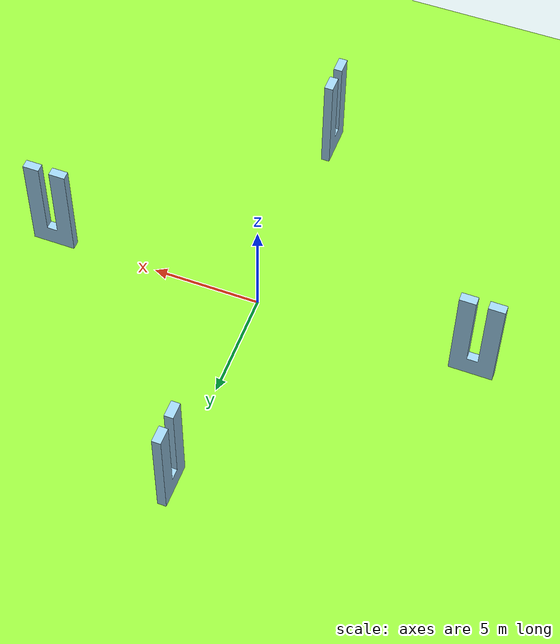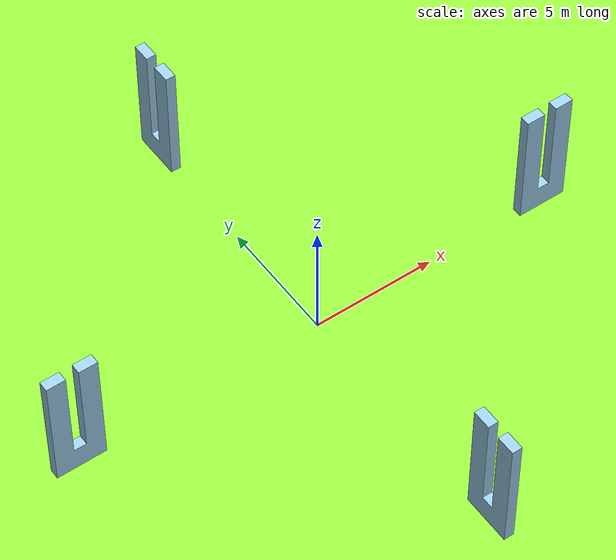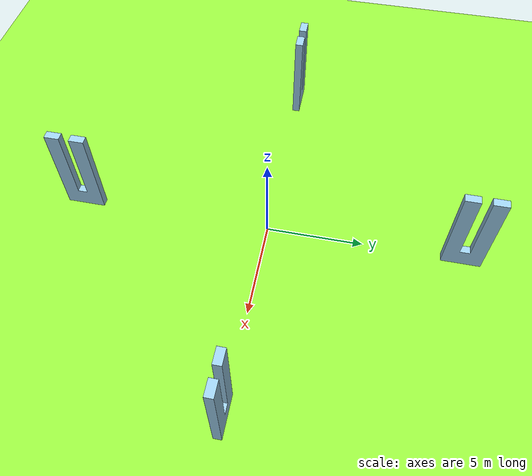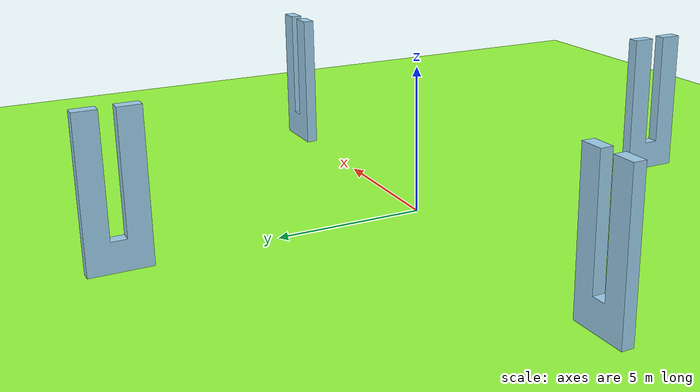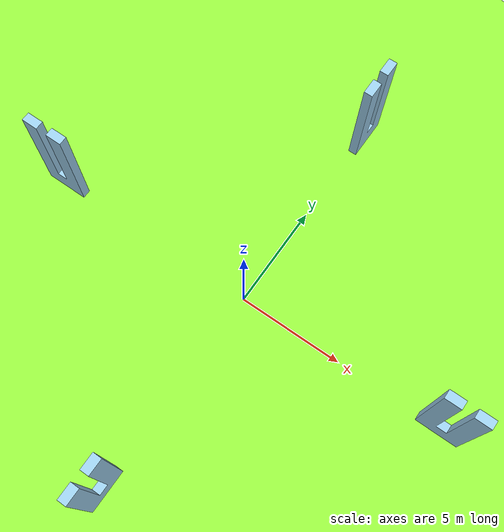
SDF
<?xml version="1.0" encoding="UTF-8"?>
<sdf version="1.9">
  <world name="window">
    <physics type="ode">
      <max_step_size>0.004</max_step_size>
      <real_time_factor>1.0</real_time_factor>
      <real_time_update_rate>250</real_time_update_rate>
    </physics>
    <plugin name="gz::sim::systems::Physics" filename="gz-sim-physics-system" />
    <plugin name="gz::sim::systems::UserCommands" filename="gz-sim-user-commands-system" />
    <plugin name="gz::sim::systems::SceneBroadcaster" filename="gz-sim-scene-broadcaster-system" />
    <plugin name="gz::sim::systems::Contact" filename="gz-sim-contact-system" />
    <plugin name="gz::sim::systems::Imu" filename="gz-sim-imu-system" />
    <plugin name="gz::sim::systems::AirPressure" filename="gz-sim-air-pressure-system" />
    <plugin name="gz::sim::systems::ApplyLinkWrench" filename="gz-sim-apply-link-wrench-system" />
    <plugin name="gz::sim::systems::NavSat" filename="gz-sim-navsat-system" />
    <plugin name="gz::sim::systems::Sensors" filename="gz-sim-sensors-system">
      <render_engine>ogre2</render_engine>
    </plugin>
    <gui fullscreen="false">
      <!-- 3D scene -->
      <plugin filename="MinimalScene" name="3D View">
        <gz-gui>
          <title>3D View</title>
          <property type="bool" key="showTitleBar">false</property>
          <property type="string" key="state">docked</property>
        </gz-gui>
        <engine>ogre2</engine>
        <scene>scene</scene>
        <ambient_light>0.4 0.4 0.4</ambient_light>
        <background_color>0.8 0.8 0.8</background_color>
        <camera_pose>-6 0 6 0 0.5 0</camera_pose>
        <camera_clip>
          <near>0.25</near>
          <far>25000</far>
        </camera_clip>
      </plugin>
      <!-- Plugins that add functionality to the scene -->
      <plugin filename="EntityContextMenuPlugin" name="Entity context menu">
        <gz-gui>
          <property key="state" type="string">floating</property>
          <property key="width" type="double">5</property>
          <property key="height" type="double">5</property>
          <property key="showTitleBar" type="bool">false</property>
        </gz-gui>
      </plugin>
      <plugin filename="GzSceneManager" name="Scene Manager">
        <gz-gui>
          <property key="resizable" type="bool">false</property>
          <property key="width" type="double">5</property>
          <property key="height" type="double">5</property>
          <property key="state" type="string">floating</property>
          <property key="showTitleBar" type="bool">false</property>
        </gz-gui>
      </plugin>
      <plugin filename="InteractiveViewControl" name="Interactive view control">
        <gz-gui>
          <property key="resizable" type="bool">false</property>
          <property key="width" type="double">5</property>
          <property key="height" type="double">5</property>
          <property key="state" type="string">floating</property>
          <property key="showTitleBar" type="bool">false</property>
        </gz-gui>
      </plugin>
      <plugin filename="CameraTracking" name="Camera Tracking">
        <gz-gui>
          <property key="resizable" type="bool">false</property>
          <property key="width" type="double">5</property>
          <property key="height" type="double">5</property>
          <property key="state" type="string">floating</property>
          <property key="showTitleBar" type="bool">false</property>
        </gz-gui>
      </plugin>
      <plugin filename="MarkerManager" name="Marker manager">
        <gz-gui>
          <property key="resizable" type="bool">false</property>
          <property key="width" type="double">5</property>
          <property key="height" type="double">5</property>
          <property key="state" type="string">floating</property>
          <property key="showTitleBar" type="bool">false</property>
        </gz-gui>
      </plugin>
      <plugin filename="SelectEntities" name="Select Entities">
        <gz-gui>
          <anchors target="Select entities">
            <line own="right" target="right" />
            <line own="top" target="top" />
          </anchors>
          <property key="resizable" type="bool">false</property>
          <property key="width" type="double">5</property>
          <property key="height" type="double">5</property>
          <property key="state" type="string">floating</property>
          <property key="showTitleBar" type="bool">false</property>
        </gz-gui>
      </plugin>
      <plugin filename="VisualizationCapabilities" name="Visualization Capabilities">
        <gz-gui>
          <property key="resizable" type="bool">false</property>
          <property key="width" type="double">5</property>
          <property key="height" type="double">5</property>
          <property key="state" type="string">floating</property>
          <property key="showTitleBar" type="bool">false</property>
        </gz-gui>
      </plugin>
      <plugin filename="Spawn" name="Spawn Entities">
        <gz-gui>
          <anchors target="Select entities">
            <line own="right" target="right" />
            <line own="top" target="top" />
          </anchors>
          <property key="resizable" type="bool">false</property>
          <property key="width" type="double">5</property>
          <property key="height" type="double">5</property>
          <property key="state" type="string">floating</property>
          <property key="showTitleBar" type="bool">false</property>
        </gz-gui>
      </plugin>
      <plugin name="World control" filename="WorldControl">
        <gz-gui>
          <title>World control</title>
          <property type="bool" key="showTitleBar">0</property>
          <property type="bool" key="resizable">0</property>
          <property type="double" key="height">72</property>
          <property type="double" key="width">121</property>
          <property type="double" key="z">1</property>
          <property type="string" key="state">floating</property>
          <anchors target="3D View">
            <line own="left" target="left" />
            <line own="bottom" target="bottom" />
          </anchors>
        </gz-gui>
        <play_pause>1</play_pause>
        <step>1</step>
        <start_paused>1</start_paused>
      </plugin>
      <plugin name="World stats" filename="WorldStats">
        <gz-gui>
          <title>World stats</title>
          <property type="bool" key="showTitleBar">0</property>
          <property type="bool" key="resizable">0</property>
          <property type="double" key="height">110</property>
          <property type="double" key="width">290</property>
          <property type="double" key="z">1</property>
          <property type="string" key="state">floating</property>
          <anchors target="3D View">
            <line own="right" target="right" />
            <line own="bottom" target="bottom" />
          </anchors>
        </gz-gui>
        <sim_time>1</sim_time>
        <real_time>1</real_time>
        <real_time_factor>1</real_time_factor>
        <iterations>1</iterations>
      </plugin>
      <plugin name="Entity tree" filename="EntityTree" />
    </gui>
    <gravity>0 0 -9.8000000000000007</gravity>
    <magnetic_field>6.0000000000000002e-06 2.3e-05 -4.1999999999999998e-05</magnetic_field>
    <atmosphere type='adiabatic'/>
    <scene>
      <sky>
        <clouds>
          <speed>12</speed>
        </clouds>
      </sky>
      <grid>true</grid>
      <ambient>0.5 0.5 0.5 0.300000012</ambient>
      <background>0.300000012 0.300000012 0.300000012 0.300000012</background>
      <shadows>true</shadows>
    </scene>
    <spherical_coordinates>
      <surface_model>EARTH_WGS84</surface_model>
      <world_frame_orientation>ENU</world_frame_orientation>
      <latitude_deg>47.397971057728974</latitude_deg>
      <longitude_deg>8.5461637398001464</longitude_deg>
      <elevation>0</elevation>
      <heading_deg>0</heading_deg>
    </spherical_coordinates>
    <model name='ground_plane'>
      <static>true</static>
      <link name="link">
        <collision name="collision">
          <geometry>
            <plane>
              <normal>0 0 1</normal>
              <size>1 1</size>
            </plane>
          </geometry>
          <surface>
            <friction>
              <ode>
                <mu>0.59999999999999998</mu>
                <mu2>0.59999999999999998</mu2>
              </ode>
            </friction>
            <bounce/>
            <contact>
              <collide_bitmask>65535</collide_bitmask>
              <ode>
                <min_depth>0.0050000000000000001</min_depth>
                <kp>100000000</kp>
              </ode>
            </contact>
          </surface>
        </collision>
        <visual name='visual'>
          <cast_shadows>false</cast_shadows>
          <geometry>
            <plane>
              <normal>0 0 1</normal>
              <size>400 400</size>
            </plane>
          </geometry>
          <material>
            <diffuse>0.600000024 1 0.25 0.5</diffuse>
            <specular>0 0 0 0</specular>
            <emissive>0 0 0 0</emissive>
          </material>
        </visual>
        <pose>0 0 0 0 0 0</pose>
        <inertial>
          <pose>0 0 0 0 0 0</pose>
          <mass>1</mass>
          <inertia>
            <ixx>1</ixx>
            <ixy>0</ixy>
            <ixz>0</ixz>
            <iyy>1</iyy>
            <iyz>0</iyz>
            <izz>1</izz>
          </inertia>
        </inertial>
        <enable_wind>false</enable_wind>
      </link>
      <pose>0 0 0 0 -0 0</pose>
      <self_collide>false</self_collide>
    </model>

    <model name='wall_1'>
      <link name='link'>
        <visual name='visual'>
          <geometry>
            <mesh>
              <uri>file://mesh/wall.dae</uri>
            </mesh>
          </geometry>
        </visual>
        <collision name='collision'>
          <geometry>
            <mesh>
              <uri>file://mesh/wall.dae</uri>
            </mesh>
          </geometry>
        </collision>
        <pose>5 0 0 0 0 0</pose>
        <inertial>
          <pose>0 0 0 0 0 0</pose>
          <mass>1</mass>
          <inertia>
            <ixx>1</ixx>
            <ixy>0</ixy>
            <ixz>0</ixz>
            <iyy>1</iyy>
            <iyz>0</iyz>
            <izz>1</izz>
          </inertia>
        </inertial>
        <enable_wind>false</enable_wind>
      </link>
      <pose>5 0 0 0 0 0</pose>
      <static>false</static>2
      <self_collide>false</self_collide>
    </model>

    <model name='wall_2'>
      <link name='link'>
        <visual name='visual'>
          <geometry>
            <mesh>
              <uri>file://mesh/wall.dae</uri>
            </mesh>
          </geometry>
        </visual>
        <collision name='collision'>
          <geometry>
            <mesh>
              <uri>file://mesh/wall.dae</uri>
            </mesh>
          </geometry>
        </collision>
        <pose>-5 0 0 0 0 0</pose>
        <inertial>
          <pose>0 0 0 0 0 0</pose>
          <mass>1</mass>
          <inertia>
            <ixx>1</ixx>
            <ixy>0</ixy>
            <ixz>0</ixz>
            <iyy>1</iyy>
            <iyz>0</iyz>
            <izz>1</izz>
          </inertia>
        </inertial>
        <enable_wind>false</enable_wind>
      </link>
      <pose>-5 0 0 0 0 0</pose>
      <static>false</static>2
      <self_collide>false</self_collide>
    </model>

    <model name='wall_3'>
      <link name='link'>
        <visual name='visual'>
          <geometry>
            <mesh>
              <uri>file://mesh/wall.dae</uri>
            </mesh>
          </geometry>
        </visual>
        <collision name='collision'>
          <geometry>
            <mesh>
              <uri>file://mesh/wall.dae</uri>
            </mesh>
          </geometry>
        </collision>
        <pose>0 -5 0 0 0 1.57</pose>
        <inertial>
          <pose>0 0 0 0 0 0</pose>
          <mass>1</mass>
          <inertia>
            <ixx>1</ixx>
            <ixy>0</ixy>
            <ixz>0</ixz>
            <iyy>1</iyy>
            <iyz>0</iyz>
            <izz>1</izz>
          </inertia>
        </inertial>
        <enable_wind>false</enable_wind>
      </link>
      <pose>0 -5 0 0 0 0</pose>
      <static>false</static>2
      <self_collide>false</self_collide>
    </model>

    <model name='wall_4'>
      <link name='link'>
        <visual name='visual'>
          <geometry>
            <mesh>
              <uri>file://mesh/wall.dae</uri>
            </mesh>
          </geometry>
        </visual>
        <collision name='collision'>
          <geometry>
            <mesh>
              <uri>file://mesh/wall.dae</uri>
            </mesh>
          </geometry>
        </collision>
        <pose>0 5 0 0 0 1.57</pose>
        <inertial>
          <pose>0 0 0 0 0 0</pose>
          <mass>1</mass>
          <inertia>
            <ixx>1</ixx>
            <ixy>0</ixy>
            <ixz>0</ixz>
            <iyy>1</iyy>
            <iyz>0</iyz>
            <izz>1</izz>
          </inertia>
        </inertial>
        <enable_wind>false</enable_wind>
      </link>
      <pose>0 5 0 0 0 0</pose>
      <static>false</static>2
      <self_collide>false</self_collide>
    </model>

    <light name="sunUTC" type="directional">
      <pose>0 0 100 0 -0 0</pose>
      <cast_shadows>true</cast_shadows>
      <intensity>1</intensity>
      <direction>0.001 0.625 -0.78</direction>
      <diffuse>0.904 0.904 0.904 1</diffuse>
      <specular>0.271 0.271 0.271 1</specular>
      <attenuation>
        <range>2000</range>
        <linear>0</linear>
        <constant>1</constant>
        <quadratic>0</quadratic>
      </attenuation>
      <spot>
        <inner_angle>0</inner_angle>
        <outer_angle>0</outer_angle>
        <falloff>0</falloff>
      </spot>
    </light>
    <spherical_coordinates>
      <surface_model>EARTH_WGS84</surface_model>
      <world_frame_orientation>ENU</world_frame_orientation>
      <latitude_deg>47.397971057728974</latitude_deg>
      <longitude_deg> 8.546163739800146</longitude_deg>
      <elevation>0</elevation>
    </spherical_coordinates>

  </world>
</sdf>
